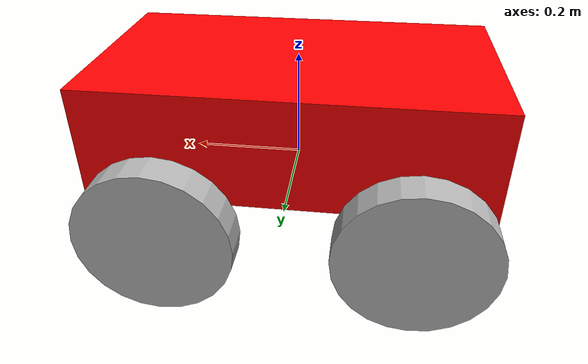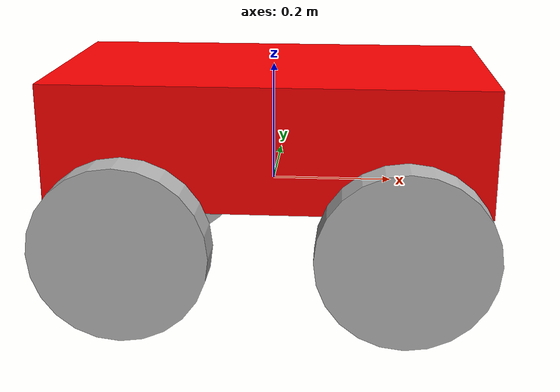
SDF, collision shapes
<?xml version="1.0" ?>
<sdf version="1.5">
  <model name="mobile_bot">
  <static>false</static>

  <!-- ****************** ROBOT BASE FOOTPRINT ***************************  -->
  <pose>0.0 0.0 0.0 0.0 0.0 0.0</pose>
  <link name="base_footprint"/>

  <!-- ********************** ROBOT BASE *********************************  -->
  <link name="base_link">

    <collision name="base_collision">
      <pose>0 0 0.1 0 0 0</pose>
      <geometry>
        <box>
          <size>0.70 0.39 0.20</size>
        </box>
      </geometry>
    </collision>

    <visual name="base_visual">
      <pose>0 0 -0.05 1.5707963267949 0 3.141592654</pose>
      <geometry>
        <mesh>
          <uri>model://mobile_bot_description/meshes/robot_base.stl</uri>
          <scale>1.0 1.0 1.0</scale>
        </mesh>
      </geometry>
      <material>
        <ambient>1.0 0.0 0.0 1.0</ambient>
        <diffuse>1.0 0.0 0.0 1.0</diffuse>
        <specular>0.0 0.0 0.0 1.0</specular>
        <emissive>0.0 0.0 0.0 1.0</emissive>
      </material>
    </visual>
  </link>

  <!-- *********************** IMU SENSOR SETUP **************************  -->
  <link name="imu_link">
    <gravity>true</gravity>
    <sensor name="bmb_imu" type="imu">
      <always_on>true</always_on>
      <update_rate>100</update_rate>
      <visualize>true</visualize>
      <imu>
        <orientation>
          <x>
            <noise type="gaussian">
              <mean>0.0</mean>
              <stddev>2e-3</stddev>
            </noise>
          </x>
          <y>
            <noise type="gaussian">
              <mean>0.0</mean>
              <stddev>2e-3</stddev>
            </noise>
          </y>
          <z>
            <noise type="gaussian">
              <mean>0.0</mean>
              <stddev>2e-3</stddev>
            </noise>
          </z>
        </orientation>
        <angular_velocity>
          <x>
            <noise type="gaussian">
              <mean>0.0</mean>
              <stddev>2e-4</stddev>
            </noise>
          </x>
          <y>
            <noise type="gaussian">
              <mean>0.0</mean>
              <stddev>2e-4</stddev>
            </noise>
          </y>
          <z>
            <noise type="gaussian">
              <mean>0.0</mean>
              <stddev>2e-4</stddev>
            </noise>
          </z>
        </angular_velocity>
        <linear_acceleration>
          <x>
            <noise type="gaussian">
              <mean>0.0</mean>
              <stddev>1.7e-2</stddev>
            </noise>
          </x>
          <y>
            <noise type="gaussian">
              <mean>0.0</mean>
              <stddev>1.7e-2</stddev>
            </noise>
          </y>
          <z>
            <noise type="gaussian">
              <mean>0.0</mean>
              <stddev>1.7e-2</stddev>
            </noise>
          </z>
        </linear_acceleration>
      </imu>
      <plugin name="mobile_bot_imu" filename="libgazebo_ros_imu_sensor.so">
        <initial_orientation_as_reference>false</initial_orientation_as_reference>
        <frame_name>imu_link</frame_name>
        <ros>
          <namespace>/imu</namespace>
          <remapping>~/out:=data</remapping>
        </ros>
      </plugin>
    </sensor>
  </link>

  <!-- *********************** GPS SETUP *********************************  -->
  <link name="gps_link">
    <sensor name="bmb_gps" type="gps">
      <always_on>true</always_on>
      <update_rate>10.0</update_rate>
      <gps>
        <position_sensing>
          <horizontal>
            <noise type="gaussian">
              <mean>0.0</mean>
              <stddev>1e-2</stddev>
            </noise>
          </horizontal>
          <vertical>
            <noise type="gaussian">
              <mean>0.0</mean>
              <stddev>1</stddev>
            </noise>
          </vertical>
        </position_sensing>
      </gps>
      <plugin name="mobile_bot_gps" filename="libgazebo_ros_gps_sensor.so">
        <ros>
          <remapping>~/out:=gps/fix</remapping>
        </ros>
      </plugin>
    </sensor>
  </link>

 <!-- ****************************** LIDAR *****************************    -->
  <link name="lidar_link">
  <inertial>
    <pose>0.215 0 0.13 0 0 0</pose>
    <inertia>
      <ixx>0.001</ixx>
      <ixy>0.000</ixy>
      <ixz>0.000</ixz>
      <iyy>0.001</iyy>
      <iyz>0.000</iyz>
      <izz>0.001</izz>
    </inertia>
    <mass>0.114</mass>
  </inertial>

  <collision name="lidar_collision">
    <pose>0.215 0 0.13 0 0 0</pose>
    <geometry>
      <cylinder>
        <radius>0.05</radius>
        <length>0.04</length>
      </cylinder>
    </geometry>
  </collision>

  <visual name="lidar_visual">
    <pose>0.215 0 0.13 0 0 0</pose>
    <geometry>
      <cylinder>
        <radius>0.05</radius>
        <length>0.04</length>
      </cylinder>
    </geometry>
    <material>
      <ambient>0.0 0.0 0.0 1.0</ambient>
      <diffuse>0.0 0.0 0.0 1.0</diffuse>
      <specular>0.0 0.0 0.0 1.0</specular>
      <emissive>0.0 0.0 0.0 1.0</emissive>
    </material>
  </visual>

  <sensor name="lidar" type="ray">
    <pose>0.215 0 0.215 0 0 0</pose>
    <always_on>true</always_on>
    <visualize>true</visualize>
    <update_rate>10</update_rate>
    <ray>
      <scan>
        <horizontal>
          <samples>24</samples> <!--quantidade de feixes gerados pelo sensor-->
          <min_angle>0.000000</min_angle>
          <max_angle>6.283185</max_angle>
        </horizontal>
      </scan>
      <range>
        <min>0.120000</min> <!--alcance mínimo do sensor em metros-->
        <max>20.0</max> <!--alcance máximo do sensor em metros-->
      </range>
      <noise>
        <type>gaussian</type>
        <mean>0.0</mean>
        <stddev>0.01</stddev>
      </noise>
    </ray>
    <plugin name="scan" filename="libgazebo_ros_ray_sensor.so">
      <ros>
        <argument>~/out:=scan</argument>
      </ros>
      <output_type>sensor_msgs/LaserScan</output_type>
      <frame_name>lidar_link</frame_name>
    </plugin>
  </sensor>
</link>

  <!-- *********************** DRIVE WHEELS ******************************  -->
  <link name="drivewhl_l_link">
    <pose>-0.221 0.23 -0.05 0 1.570796 1.570796</pose>

    <collision name="drivewhl_l_collision">
      <geometry>
        <cylinder>
          <radius>0.14</radius>
          <length>0.06</length>
        </cylinder>
      </geometry>
    </collision>

    <visual name="drivewhl_l_visual">
      <geometry>
        <cylinder>
          <radius>0.14</radius>
          <length>0.06</length>
        </cylinder>
      </geometry>
    </visual>
  </link>

  <link name="drivewhl_r_link">
    <pose>-0.221 -0.23 -0.05 0 1.570796 1.570796</pose>

    <collision name="drivewhl_r_collision">
      <geometry>
        <cylinder>
          <radius>0.14</radius>
          <length>0.06</length>
        </cylinder>
      </geometry>
    </collision>

    <visual name="drivewhl_r_visual">
      <geometry>
        <cylinder>
          <radius>0.14</radius>
          <length>0.06</length>
        </cylinder>
      </geometry>
    </visual>
  </link>

<link name="front_wl_link">
  <pose>0.217 0.23 -0.05 0 1.570796 1.570796</pose>
  <collision name="front_wl_collision">
    <geometry>
      <cylinder>
        <radius>0.14</radius>
        <length>0.06</length>
      </cylinder>
    </geometry>
  </collision>
  <visual name="front_wl_visual">
    <geometry>
      <cylinder>
        <radius>0.14</radius>
        <length>0.06</length>
      </cylinder>
    </geometry>
  </visual>
</link>

<link name="front_wr_link">
  <pose>0.217 -0.23 -0.05 0 1.570796 1.570796</pose>
  <collision name="front_wr_collision">
    <geometry>
      <cylinder>
        <radius>0.14</radius>
        <length>0.06</length>
      </cylinder>
    </geometry>
  </collision>
  <visual name="front_wr_visual">
    <geometry>
      <cylinder>
        <radius>0.14</radius>
        <length>0.06</length>
      </cylinder>
    </geometry>
  </visual>
</link>

  <!-- ************************ JOINTS ***********************************  -->
  <!-- Pose of the joint is the same as the child link frame -->
  <!-- Axis is the axis of rotation relative to the child link frame -->

  <joint name="base_joint" type="fixed">
    <parent>base_footprint</parent>
    <child>base_link</child>
    <pose>0 0 0 0 0 0</pose>
  </joint>

  <joint name="drivewhl_l_joint" type="revolute">
    <parent>base_link</parent>
    <child>drivewhl_l_link</child>
    <pose>0 0 0 0 0 0</pose>
    <axis>
      <xyz>0 0 1</xyz>
    </axis>
  </joint>

  <joint name="drivewhl_r_joint" type="revolute">
    <parent>base_link</parent>
    <child>drivewhl_r_link</child>
    <pose>0 0 0 0 0 0</pose>
    <axis>
      <xyz>0 0 1</xyz>
    </axis>
  </joint>

  <joint name="front_wl_joint" type="revolute">
  <parent>base_link</parent>
  <child>front_wl_link</child>
  <pose>0 0 0 0 0 0</pose>
  <axis>
    <xyz>0 0 1</xyz>
  </axis>
</joint>

<joint name="front_wr_joint" type="revolute">
  <parent>base_link</parent>
  <child>front_wr_link</child>
  <pose>0 0 0 0 0 0</pose>
  <axis>
    <xyz>0 0 1</xyz>
  </axis>
</joint>

  <joint name="imu_joint" type="fixed">
    <parent>base_link</parent>
    <child>imu_link</child>
    <pose>0 0 0 0 0 0</pose>
  </joint>

  <joint name="gps_joint" type="fixed">
    <parent>base_link</parent>
    <child>gps_link</child>
    <pose>0 0 0 0 0 0</pose>
  </joint>

  <joint name="lidar_joint" type="fixed">
    <parent>base_link</parent>
    <child>lidar_link</child>
    <pose>0 0 0 0 0 0</pose>
  </joint>
 <!-- *********************** WHEEL ODOMETRY ***************************    -->
  <plugin name="mobile_bot_diff_drive" filename="libgazebo_ros_diff_drive.so">

    <update_rate>30</update_rate>

    <!-- wheels -->
    <left_joint>front_wl_joint</left_joint>
    <right_joint>front_wr_joint</right_joint>
    <left_rear_joint>drivewhl_l_joint</left_rear_joint>
    <right_rear_joint>drivewhl_r_joint</right_rear_joint>

    <!-- kinematics -->
    <wheel_separation>0.52</wheel_separation>
    <wheel_diameter>0.28</wheel_diameter>

    <!-- limits -->
    <max_wheel_torque>20</max_wheel_torque>
    <max_wheel_acceleration>1.0</max_wheel_acceleration>

    <!-- Receive velocity commands on this ROS topic -->
    <command_topic>cmd_vel</command_topic>

    <!-- output -->
    <!-- When false, publish no wheel odometry data to a ROS topic -->
    <publish_odom>true</publish_odom>

    <!-- When true, publish coordinate transform from odom to base_footprint -->
    <publish_odom_tf>true</publish_odom_tf>

    <!-- When true, publish coordinate transform from base_link to the wheels -->
    <publish_wheel_tf>false</publish_wheel_tf>

    <odometry_topic>odom</odometry_topic>
    <odometry_frame>odom</odometry_frame>
    <robot_base_frame>base_footprint</robot_base_frame>

    <!-- Odometry source, 0 for ENCODER, 1 for WORLD, defaults to WORLD -->
    <odometry_source>1</odometry_source>

    <!-- Change the ROS topic we will publish the odometry data to -->
    <ros>
      <remapping>odom:=odom</remapping>
    </ros>

  </plugin>

 <!-- *********************** JOINT STATE PUBLISHER *********************   -->

  <plugin name="mobile_bot_joint_state" filename="libgazebo_ros_joint_state_publisher.so">
    <ros>
      <remapping>~/out:=joint_states</remapping>
    </ros>
    <update_rate>30</update_rate>
    <joint_name>drivewhl_l_joint</joint_name>
    <joint_name>drivewhl_r_joint</joint_name>
    <joint_name>front_wl_joint</joint_name>
    <joint_name>front_wr_joint</joint_name>
  </plugin>

  </model>
</sdf>
